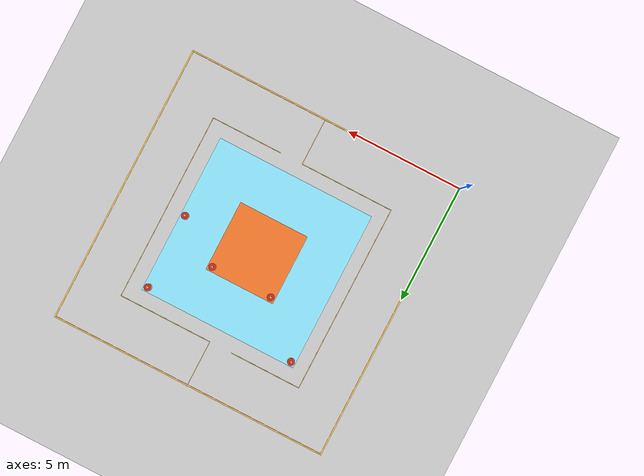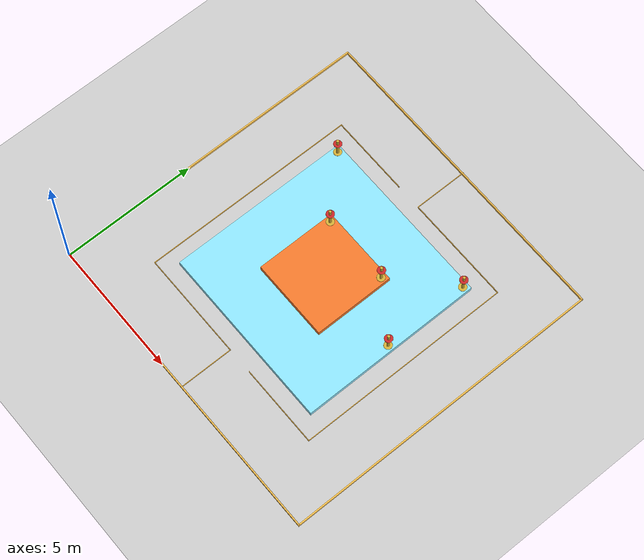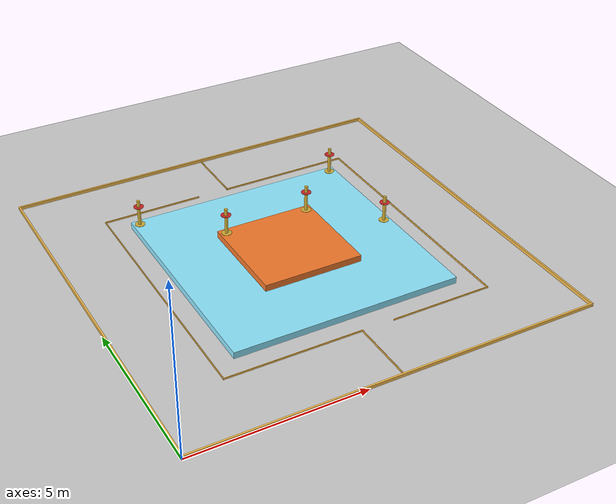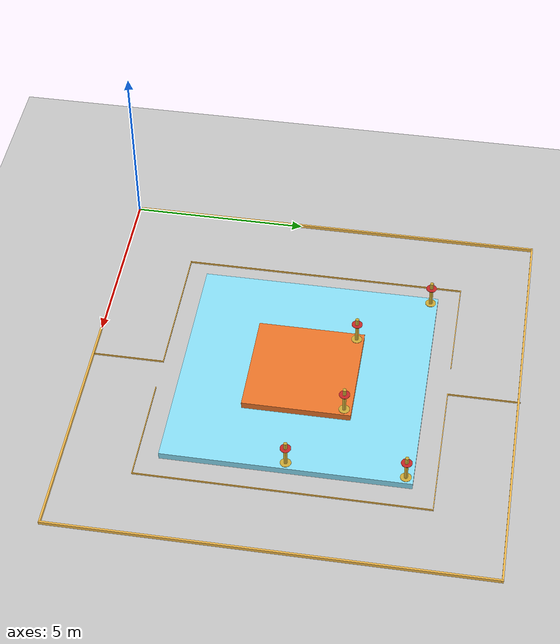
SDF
<sdf version="1.7">
 <world name="default">
  <model name="ground_plane">
   <static>1</static>
   <link name="link">
    <collision name="collision">
     <geometry><plane><normal>0 0 1</normal><size>100 100</size></plane></geometry>
     <surface>
      <contact><collide_bitmask>65535</collide_bitmask></contact>
      <friction><ode><mu>100</mu><mu2>50</mu2></ode></friction>
     </surface>
    </collision>
    <visual name="visual">
     <cast_shadows>0</cast_shadows>
     <geometry><plane><normal>0 0 1</normal><size>100 100</size></plane></geometry>
     <material>
      <script><uri>file://media/materials/scripts/gazebo.material</uri><name>Gazebo/Grey</name></script>
     </material>
    </visual>
   </link>
  </model>
  <model name="lvl0">
   <pose>6 6 0 0 -0 0</pose>
   <link name="Wall_10">
    <collision name="Wall_10_Collision">
     <geometry><box><size>8.02 0.02 0.05</size></box></geometry>
     <pose>0 0 0.025 0 -0 0</pose>
    </collision>
    <visual name="Wall_10_Visual">
     <pose>0 0 0.025 0 -0 0</pose>
     <geometry><box><size>8.02 0.02 0.05</size></box></geometry>
     <material>
      <script><uri>file://media/materials/scripts/gazebo.material</uri><name>Gazebo/Grey</name></script>
      <ambient>1 0.764706 0.305882 1</ambient>
     </material>
     <meta><layer>0</layer></meta>
    </visual>
    <pose>-3.975 0.0075 0 0 -0 1.5708</pose>
   </link>
   <link name="Wall_12">
    <collision name="Wall_12_Collision">
     <geometry><box><size>8.02 0.02 0.05</size></box></geometry>
     <pose>0 0 0.025 0 -0 0</pose>
    </collision>
    <visual name="Wall_12_Visual">
     <pose>0 0 0.025 0 -0 0</pose>
     <geometry><box><size>8.02 0.02 0.05</size></box></geometry>
     <material>
      <script><uri>file://media/materials/scripts/gazebo.material</uri><name>Gazebo/Grey</name></script>
      <ambient>1 0.764706 0.305882 1</ambient>
     </material>
     <meta><layer>0</layer></meta>
    </visual>
    <pose>4.025 0.0075 0 0 -0 1.5708</pose>
   </link>
   <link name="Wall_14">
    <collision name="Wall_14_Collision">
     <geometry><box><size>4.02 0.02 0.05</size></box></geometry>
     <pose>0 0 0.025 0 -0 0</pose>
    </collision>
    <visual name="Wall_14_Visual">
     <pose>0 0 0.025 0 -0 0</pose>
     <geometry><box><size>4.02 0.02 0.05</size></box></geometry>
     <material>
      <script><uri>file://media/materials/scripts/gazebo.material</uri><name>Gazebo/Grey</name></script>
      <ambient>1 0.764706 0.305882 1</ambient>
     </material>
     <meta><layer>0</layer></meta>
    </visual>
    <pose>2.025 4.0075 0 0 -0 3.14159</pose>
   </link>
   <link name="Wall_16">
    <collision name="Wall_16_Collision">
     <geometry><box><size>4.02 0.02 0.05</size></box></geometry>
     <pose>0 0 0.025 0 -0 0</pose>
    </collision>
    <visual name="Wall_16_Visual">
     <pose>0 0 0.025 0 -0 0</pose>
     <geometry><box><size>4.02 0.02 0.05</size></box></geometry>
     <material>
      <script><uri>file://media/materials/scripts/gazebo.material</uri><name>Gazebo/Grey</name></script>
      <ambient>1 0.764706 0.305882 1</ambient>
     </material>
     <meta><layer>0</layer></meta>
    </visual>
    <pose>-1.975 -3.9925 0 0 -0 0</pose>
   </link>
   <link name="Wall_18">
    <collision name="Wall_18_Collision">
     <geometry><box><size>2.02 0.02 0.05</size></box></geometry>
     <pose>0 0 0.025 0 -0 0</pose>
    </collision>
    <visual name="Wall_18_Visual">
     <pose>0 0 0.025 0 -0 0</pose>
     <geometry><box><size>2.02 0.02 0.05</size></box></geometry>
     <material>
      <script><uri>file://media/materials/scripts/gazebo.material</uri><name>Gazebo/Grey</name></script>
      <ambient>1 0.764706 0.305882 1</ambient>
     </material>
     <meta><layer>0</layer></meta>
    </visual>
    <pose>0.025 5.0075 0 0 -0 1.5708</pose>
   </link>
   <link name="Wall_20">
    <collision name="Wall_20_Collision">
     <geometry><box><size>2.02 0.02 0.05</size></box></geometry>
     <pose>0 0 0.025 0 -0 0</pose>
    </collision>
    <visual name="Wall_20_Visual">
     <pose>0 0 0.025 0 -0 0</pose>
     <geometry><box><size>2.02 0.02 0.05</size></box></geometry>
     <material>
      <script><uri>file://media/materials/scripts/gazebo.material</uri><name>Gazebo/Grey</name></script>
      <ambient>1 0.764706 0.305882 1</ambient>
     </material>
     <meta><layer>0</layer></meta>
    </visual>
    <pose>0.025 -4.9925 0 0 -0 -1.5708</pose>
   </link>
   <link name="Wall_22">
    <collision name="Wall_22_Collision">
     <geometry><box><size>3.045 0.02 0.05</size></box></geometry>
     <pose>0 0 0.025 0 -0 0</pose>
    </collision>
    <visual name="Wall_22_Visual">
     <pose>0 0 0.025 0 -0 0</pose>
     <geometry><box><size>3.045 0.02 0.05</size></box></geometry>
     <material>
      <script><uri>file://media/materials/scripts/gazebo.material</uri><name>Gazebo/Grey</name></script>
      <ambient>1 0.764706 0.305882 1</ambient>
     </material>
     <meta><layer>0</layer></meta>
    </visual>
    <pose>-2.4625 4.0075 0 0 -0 0</pose>
   </link>
   <link name="Wall_24">
    <collision name="Wall_24_Collision">
     <geometry><box><size>3.045 0.02 0.05</size></box></geometry>
     <pose>0 0 0.025 0 -0 0</pose>
    </collision>
    <visual name="Wall_24_Visual">
     <pose>0 0 0.025 0 -0 0</pose>
     <geometry><box><size>3.045 0.02 0.05</size></box></geometry>
     <material>
      <script><uri>file://media/materials/scripts/gazebo.material</uri><name>Gazebo/Grey</name></script>
      <ambient>1 0.764706 0.305882 1</ambient>
     </material>
     <meta><layer>0</layer></meta>
    </visual>
    <pose>2.5125 -3.9925 0 0 -0 3.14159</pose>
   </link>
   <link name="Wall_5">
    <collision name="Wall_5_Collision">
     <geometry><box><size>12 0.05 0.1</size></box></geometry>
     <pose>0 0 0.05 0 -0 0</pose>
    </collision>
    <visual name="Wall_5_Visual">
     <pose>0 0 0.05 0 -0 0</pose>
     <geometry><box><size>12 0.05 0.1</size></box></geometry>
     <material>
      <script><uri>file://media/materials/scripts/gazebo.material</uri><name>Gazebo/Grey</name></script>
      <ambient>1 0.764706 0.305882 1</ambient>
     </material>
     <meta><layer>0</layer></meta>
    </visual>
    <pose>-5.975 -0.0175 0 0 -0 -1.5708</pose>
   </link>
   <link name="Wall_6">
    <collision name="Wall_6_Collision">
     <geometry><box><size>12 0.05 0.1</size></box></geometry>
     <pose>0 0 0.05 0 -0 0</pose>
    </collision>
    <visual name="Wall_6_Visual">
     <pose>0 0 0.05 0 -0 0</pose>
     <geometry><box><size>12 0.05 0.1</size></box></geometry>
     <material>
      <script><uri>file://media/materials/scripts/gazebo.material</uri><name>Gazebo/Grey</name></script>
      <ambient>1 0.764706 0.305882 1</ambient>
     </material>
     <meta><layer>0</layer></meta>
    </visual>
    <pose>0 -5.9925 0 0 -0 0</pose>
   </link>
   <link name="Wall_7">
    <collision name="Wall_7_Collision">
     <geometry><box><size>12 0.05 0.1</size></box></geometry>
     <pose>0 0 0.05 0 -0 0</pose>
    </collision>
    <visual name="Wall_7_Visual">
     <pose>0 0 0.05 0 -0 0</pose>
     <geometry><box><size>12 0.05 0.1</size></box></geometry>
     <material>
      <script><uri>file://media/materials/scripts/gazebo.material</uri><name>Gazebo/Grey</name></script>
      <ambient>1 0.764706 0.305882 1</ambient>
     </material>
     <meta><layer>0</layer></meta>
    </visual>
    <pose>5.975 -0.0175 0 0 -0 1.5708</pose>
   </link>
   <link name="Wall_8">
    <collision name="Wall_8_Collision">
     <geometry><box><size>12 0.05 0.1</size></box></geometry>
     <pose>0 0 0.05 0 -0 0</pose>
    </collision>
    <visual name="Wall_8_Visual">
     <pose>0 0 0.05 0 -0 0</pose>
     <geometry><box><size>12 0.05 0.1</size></box></geometry>
     <material>
      <script><uri>file://media/materials/scripts/gazebo.material</uri><name>Gazebo/Grey</name></script>
      <ambient>1 0.764706 0.305882 1</ambient>
     </material>
     <meta><layer>0</layer></meta>
    </visual>
    <pose>0 5.9575 0 0 -0 3.14159</pose>
   </link>
   <static>1</static>
  </model>
  <model name="pole_tier_1_2">
   <link name="link">
    <inertial>
     <mass>1</mass>
     <inertia><ixx>0.145833</ixx><ixy>0</ixy><ixz>0</ixz><iyy>0.145833</iyy><iyz>0</iyz><izz>0.125</izz></inertia>
    </inertial>
    <pose>0 0 0.4 0 -0 0</pose>
    <visual name="visual">
     <geometry><cylinder><radius>0.05</radius><length>0.8</length></cylinder></geometry>
     <material>
      <script><name>Gazebo/Gray</name><uri>file://media/materials/scripts/gazebo.material</uri></script>
      <shader type="pixel"><normal_map>__default__</normal_map></shader>
      <ambient>0.83 0.686 0.216 1</ambient>
      <diffuse>0.83 0.686 0.216 1</diffuse>
      <specular>0.83 0.686 0.216 1</specular>
      <emissive>0 0 0 1</emissive>
     </material>
    </visual>
    <collision name="collision">
     <geometry><cylinder><radius>0.05</radius><length>0.8</length></cylinder></geometry>
     <surface>
      <friction>
       <ode><mu>1</mu><mu2>1</mu2><fdir1>0 0 0</fdir1><slip1>0</slip1><slip2>0</slip2></ode>
       <torsional>
        <coefficient>1</coefficient>
        <patch_radius>0</patch_radius>
        <surface_radius>0</surface_radius>
        <use_patch_radius>1</use_patch_radius>
        <ode><slip>0</slip></ode>
       </torsional>
      </friction>
      <bounce><restitution_coefficient>0</restitution_coefficient><threshold>1e+06</threshold></bounce>
      <contact>
       <collide_without_contact>0</collide_without_contact>
       <collide_without_contact_bitmask>1</collide_without_contact_bitmask>
       <collide_bitmask>1</collide_bitmask>
       <ode>
        <soft_cfm>0</soft_cfm>
        <soft_erp>0.2</soft_erp>
        <kp>1e+13</kp>
        <kd>1</kd>
        <max_vel>0.01</max_vel>
        <min_depth>0</min_depth>
       </ode>
       <bullet>
        <split_impulse>1</split_impulse>
        <split_impulse_penetration_threshold>-0.01</split_impulse_penetration_threshold>
        <soft_cfm>0</soft_cfm>
        <soft_erp>0.2</soft_erp>
        <kp>1e+13</kp>
        <kd>1</kd>
       </bullet>
      </contact>
     </surface>
    </collision>
   </link>
   <link name="link_clone">
    <inertial>
     <mass>1</mass>
     <inertia><ixx>0.145833</ixx><ixy>0</ixy><ixz>0</ixz><iyy>0.145833</iyy><iyz>0</iyz><izz>0.125</izz></inertia>
    </inertial>
    <visual name="visual">
     <geometry><cylinder><radius>0.15</radius><length>0.01</length></cylinder></geometry>
     <material>
      <script><name>Gazebo/Grey</name><uri>file://media/materials/scripts/gazebo.material</uri></script>
      <shader type="pixel"><normal_map>__default__</normal_map></shader>
      <ambient>0.83 0.686 0.216 1</ambient>
      <diffuse>0.7 0.7 0.7 1</diffuse>
      <specular>0.01 0.01 0.01 1</specular>
      <emissive>0 0 0 1</emissive>
     </material>
    </visual>
    <collision name="collision">
     <geometry><cylinder><radius>0.15</radius><length>0.01</length></cylinder></geometry>
     <surface>
      <friction>
       <ode><mu>1</mu><mu2>1</mu2><fdir1>0 0 0</fdir1><slip1>0</slip1><slip2>0</slip2></ode>
       <torsional>
        <coefficient>1</coefficient>
        <patch_radius>0</patch_radius>
        <surface_radius>0</surface_radius>
        <use_patch_radius>1</use_patch_radius>
        <ode><slip>0</slip></ode>
       </torsional>
      </friction>
      <bounce><restitution_coefficient>0</restitution_coefficient><threshold>1e+06</threshold></bounce>
      <contact>
       <collide_without_contact>0</collide_without_contact>
       <collide_without_contact_bitmask>1</collide_without_contact_bitmask>
       <collide_bitmask>1</collide_bitmask>
       <ode>
        <soft_cfm>0</soft_cfm>
        <soft_erp>0.2</soft_erp>
        <kp>1e+13</kp>
        <kd>1</kd>
        <max_vel>0.01</max_vel>
        <min_depth>0</min_depth>
       </ode>
       <bullet>
        <split_impulse>1</split_impulse>
        <split_impulse_penetration_threshold>-0.01</split_impulse_penetration_threshold>
        <soft_cfm>0</soft_cfm>
        <soft_erp>0.2</soft_erp>
        <kp>1e+13</kp>
        <kd>1</kd>
       </bullet>
      </contact>
     </surface>
    </collision>
   </link>
   <link name="link_clone_clone">
    <inertial>
     <mass>1</mass>
     <inertia><ixx>0.145833</ixx><ixy>0</ixy><ixz>0</ixz><iyy>0.145833</iyy><iyz>0</iyz><izz>0.125</izz></inertia>
    </inertial>
    <pose>0 0 0.6 0 -0 0</pose>
    <visual name="visual">
     <geometry><cylinder><radius>0.15</radius><length>0.01</length></cylinder></geometry>
     <material>
      <script><name>Gazebo/Red</name><uri>file://media/materials/scripts/gazebo.material</uri></script>
      <shader type="pixel"><normal_map>__default__</normal_map></shader>
      <ambient>0.83 0.686 0.216 1</ambient>
      <diffuse>0.7 0.7 0.7 1</diffuse>
      <specular>0.01 0.01 0.01 1</specular>
      <emissive>0 0 0 1</emissive>
     </material>
    </visual>
    <collision name="collision">
     <geometry><cylinder><radius>0.15</radius><length>0.01</length></cylinder></geometry>
     <surface>
      <friction>
       <ode><mu>1</mu><mu2>1</mu2><fdir1>0 0 0</fdir1><slip1>0</slip1><slip2>0</slip2></ode>
       <torsional>
        <coefficient>1</coefficient>
        <patch_radius>0</patch_radius>
        <surface_radius>0</surface_radius>
        <use_patch_radius>1</use_patch_radius>
        <ode><slip>0</slip></ode>
       </torsional>
      </friction>
      <bounce><restitution_coefficient>0</restitution_coefficient><threshold>1e+06</threshold></bounce>
      <contact>
       <collide_without_contact>0</collide_without_contact>
       <collide_without_contact_bitmask>1</collide_without_contact_bitmask>
       <collide_bitmask>1</collide_bitmask>
       <ode>
        <soft_cfm>0</soft_cfm>
        <soft_erp>0.2</soft_erp>
        <kp>1e+13</kp>
        <kd>1</kd>
        <max_vel>0.01</max_vel>
        <min_depth>0</min_depth>
       </ode>
       <bullet>
        <split_impulse>1</split_impulse>
        <split_impulse_penetration_threshold>-0.01</split_impulse_penetration_threshold>
        <soft_cfm>0</soft_cfm>
        <soft_erp>0.2</soft_erp>
        <kp>1e+13</kp>
        <kd>1</kd>
       </bullet>
      </contact>
     </surface>
    </collision>
   </link>
   <joint name="link_JOINT_0" type="fixed">
    <parent>link</parent>
    <child>link_clone</child>
    <physics>
     <ode><limit><cfm>0</cfm><erp>0.2</erp></limit><suspension><cfm>0</cfm><erp>0.2</erp></suspension></ode>
    </physics>
   </joint>
   <joint name="link_JOINT_1" type="fixed">
    <parent>link</parent>
    <child>link_clone_clone</child>
    <physics>
     <ode><limit><cfm>0</cfm><erp>0.2</erp></limit><suspension><cfm>0</cfm><erp>0.2</erp></suspension></ode>
    </physics>
   </joint>
   <static>0</static>
   <pose>9.20111 9.19778 0.205004 7e-06 -2.5e-05 -0.022287</pose>
  </model>
  <model name="pole_tier_1_3">
   <link name="link">
    <inertial>
     <mass>1</mass>
     <inertia><ixx>0.145833</ixx><ixy>0</ixy><ixz>0</ixz><iyy>0.145833</iyy><iyz>0</iyz><izz>0.125</izz></inertia>
    </inertial>
    <pose>0 0 0.4 0 -0 0</pose>
    <visual name="visual">
     <geometry><cylinder><radius>0.05</radius><length>0.8</length></cylinder></geometry>
     <material>
      <script><name>Gazebo/Gray</name><uri>file://media/materials/scripts/gazebo.material</uri></script>
      <shader type="pixel"><normal_map>__default__</normal_map></shader>
      <ambient>0.83 0.686 0.216 1</ambient>
      <diffuse>0.83 0.686 0.216 1</diffuse>
      <specular>0.83 0.686 0.216 1</specular>
      <emissive>0 0 0 1</emissive>
     </material>
    </visual>
    <collision name="collision">
     <geometry><cylinder><radius>0.05</radius><length>0.8</length></cylinder></geometry>
     <surface>
      <friction>
       <ode><mu>1</mu><mu2>1</mu2><fdir1>0 0 0</fdir1><slip1>0</slip1><slip2>0</slip2></ode>
       <torsional>
        <coefficient>1</coefficient>
        <patch_radius>0</patch_radius>
        <surface_radius>0</surface_radius>
        <use_patch_radius>1</use_patch_radius>
        <ode><slip>0</slip></ode>
       </torsional>
      </friction>
      <bounce><restitution_coefficient>0</restitution_coefficient><threshold>1e+06</threshold></bounce>
      <contact>
       <collide_without_contact>0</collide_without_contact>
       <collide_without_contact_bitmask>1</collide_without_contact_bitmask>
       <collide_bitmask>1</collide_bitmask>
       <ode>
        <soft_cfm>0</soft_cfm>
        <soft_erp>0.2</soft_erp>
        <kp>1e+13</kp>
        <kd>1</kd>
        <max_vel>0.01</max_vel>
        <min_depth>0</min_depth>
       </ode>
       <bullet>
        <split_impulse>1</split_impulse>
        <split_impulse_penetration_threshold>-0.01</split_impulse_penetration_threshold>
        <soft_cfm>0</soft_cfm>
        <soft_erp>0.2</soft_erp>
        <kp>1e+13</kp>
        <kd>1</kd>
       </bullet>
      </contact>
     </surface>
    </collision>
   </link>
   <link name="link_clone">
    <inertial>
     <mass>1</mass>
     <inertia><ixx>0.145833</ixx><ixy>0</ixy><ixz>0</ixz><iyy>0.145833</iyy><iyz>0</iyz><izz>0.125</izz></inertia>
    </inertial>
    <visual name="visual">
     <geometry><cylinder><radius>0.15</radius><length>0.01</length></cylinder></geometry>
     <material>
      <script><name>Gazebo/Grey</name><uri>file://media/materials/scripts/gazebo.material</uri></script>
      <shader type="pixel"><normal_map>__default__</normal_map></shader>
      <ambient>0.83 0.686 0.216 1</ambient>
      <diffuse>0.7 0.7 0.7 1</diffuse>
      <specular>0.01 0.01 0.01 1</specular>
      <emissive>0 0 0 1</emissive>
     </material>
    </visual>
    <collision name="collision">
     <geometry><cylinder><radius>0.15</radius><length>0.01</length></cylinder></geometry>
     <surface>
      <friction>
       <ode><mu>1</mu><mu2>1</mu2><fdir1>0 0 0</fdir1><slip1>0</slip1><slip2>0</slip2></ode>
       <torsional>
        <coefficient>1</coefficient>
        <patch_radius>0</patch_radius>
        <surface_radius>0</surface_radius>
        <use_patch_radius>1</use_patch_radius>
        <ode><slip>0</slip></ode>
       </torsional>
      </friction>
      <bounce><restitution_coefficient>0</restitution_coefficient><threshold>1e+06</threshold></bounce>
      <contact>
       <collide_without_contact>0</collide_without_contact>
       <collide_without_contact_bitmask>1</collide_without_contact_bitmask>
       <collide_bitmask>1</collide_bitmask>
       <ode>
        <soft_cfm>0</soft_cfm>
        <soft_erp>0.2</soft_erp>
        <kp>1e+13</kp>
        <kd>1</kd>
        <max_vel>0.01</max_vel>
        <min_depth>0</min_depth>
       </ode>
       <bullet>
        <split_impulse>1</split_impulse>
        <split_impulse_penetration_threshold>-0.01</split_impulse_penetration_threshold>
        <soft_cfm>0</soft_cfm>
        <soft_erp>0.2</soft_erp>
        <kp>1e+13</kp>
        <kd>1</kd>
       </bullet>
      </contact>
     </surface>
    </collision>
   </link>
   <link name="link_clone_clone">
    <inertial>
     <mass>1</mass>
     <inertia><ixx>0.145833</ixx><ixy>0</ixy><ixz>0</ixz><iyy>0.145833</iyy><iyz>0</iyz><izz>0.125</izz></inertia>
    </inertial>
    <pose>0 0 0.6 0 -0 0</pose>
    <visual name="visual">
     <geometry><cylinder><radius>0.15</radius><length>0.01</length></cylinder></geometry>
     <material>
      <script><name>Gazebo/Red</name><uri>file://media/materials/scripts/gazebo.material</uri></script>
      <shader type="pixel"><normal_map>__default__</normal_map></shader>
      <ambient>0.83 0.686 0.216 1</ambient>
      <diffuse>0.7 0.7 0.7 1</diffuse>
      <specular>0.01 0.01 0.01 1</specular>
      <emissive>0 0 0 1</emissive>
     </material>
    </visual>
    <collision name="collision">
     <geometry><cylinder><radius>0.15</radius><length>0.01</length></cylinder></geometry>
     <surface>
      <friction>
       <ode><mu>1</mu><mu2>1</mu2><fdir1>0 0 0</fdir1><slip1>0</slip1><slip2>0</slip2></ode>
       <torsional>
        <coefficient>1</coefficient>
        <patch_radius>0</patch_radius>
        <surface_radius>0</surface_radius>
        <use_patch_radius>1</use_patch_radius>
        <ode><slip>0</slip></ode>
       </torsional>
      </friction>
      <bounce><restitution_coefficient>0</restitution_coefficient><threshold>1e+06</threshold></bounce>
      <contact>
       <collide_without_contact>0</collide_without_contact>
       <collide_without_contact_bitmask>1</collide_without_contact_bitmask>
       <collide_bitmask>1</collide_bitmask>
       <ode>
        <soft_cfm>0</soft_cfm>
        <soft_erp>0.2</soft_erp>
        <kp>1e+13</kp>
        <kd>1</kd>
        <max_vel>0.01</max_vel>
        <min_depth>0</min_depth>
       </ode>
       <bullet>
        <split_impulse>1</split_impulse>
        <split_impulse_penetration_threshold>-0.01</split_impulse_penetration_threshold>
        <soft_cfm>0</soft_cfm>
        <soft_erp>0.2</soft_erp>
        <kp>1e+13</kp>
        <kd>1</kd>
       </bullet>
      </contact>
     </surface>
    </collision>
   </link>
   <joint name="link_JOINT_0" type="fixed">
    <parent>link</parent>
    <child>link_clone</child>
    <physics>
     <ode><limit><cfm>0</cfm><erp>0.2</erp></limit><suspension><cfm>0</cfm><erp>0.2</erp></suspension></ode>
    </physics>
   </joint>
   <joint name="link_JOINT_1" type="fixed">
    <parent>link</parent>
    <child>link_clone_clone</child>
    <physics>
     <ode><limit><cfm>0</cfm><erp>0.2</erp></limit><suspension><cfm>0</cfm><erp>0.2</erp></suspension></ode>
    </physics>
   </joint>
   <static>0</static>
   <pose>2.80158 9.19959 0.205 4e-06 0 -0.007982</pose>
  </model>
  <model name="pole_tier_1_5">
   <link name="link">
    <inertial>
     <mass>1</mass>
     <inertia><ixx>0.145833</ixx><ixy>0</ixy><ixz>0</ixz><iyy>0.145833</iyy><iyz>0</iyz><izz>0.125</izz></inertia>
    </inertial>
    <pose>0 0 0.4 0 -0 0</pose>
    <visual name="visual">
     <geometry><cylinder><radius>0.05</radius><length>0.8</length></cylinder></geometry>
     <material>
      <script><name>Gazebo/Gray</name><uri>file://media/materials/scripts/gazebo.material</uri></script>
      <shader type="pixel"><normal_map>__default__</normal_map></shader>
      <ambient>0.83 0.686 0.216 1</ambient>
      <diffuse>0.83 0.686 0.216 1</diffuse>
      <specular>0.83 0.686 0.216 1</specular>
      <emissive>0 0 0 1</emissive>
     </material>
    </visual>
    <collision name="collision">
     <geometry><cylinder><radius>0.05</radius><length>0.8</length></cylinder></geometry>
     <surface>
      <friction>
       <ode><mu>1</mu><mu2>1</mu2><fdir1>0 0 0</fdir1><slip1>0</slip1><slip2>0</slip2></ode>
       <torsional>
        <coefficient>1</coefficient>
        <patch_radius>0</patch_radius>
        <surface_radius>0</surface_radius>
        <use_patch_radius>1</use_patch_radius>
        <ode><slip>0</slip></ode>
       </torsional>
      </friction>
      <bounce><restitution_coefficient>0</restitution_coefficient><threshold>1e+06</threshold></bounce>
      <contact>
       <collide_without_contact>0</collide_without_contact>
       <collide_without_contact_bitmask>1</collide_without_contact_bitmask>
       <collide_bitmask>1</collide_bitmask>
       <ode>
        <soft_cfm>0</soft_cfm>
        <soft_erp>0.2</soft_erp>
        <kp>1e+13</kp>
        <kd>1</kd>
        <max_vel>0.01</max_vel>
        <min_depth>0</min_depth>
       </ode>
       <bullet>
        <split_impulse>1</split_impulse>
        <split_impulse_penetration_threshold>-0.01</split_impulse_penetration_threshold>
        <soft_cfm>0</soft_cfm>
        <soft_erp>0.2</soft_erp>
        <kp>1e+13</kp>
        <kd>1</kd>
       </bullet>
      </contact>
     </surface>
    </collision>
   </link>
   <link name="link_clone">
    <inertial>
     <mass>1</mass>
     <inertia><ixx>0.145833</ixx><ixy>0</ixy><ixz>0</ixz><iyy>0.145833</iyy><iyz>0</iyz><izz>0.125</izz></inertia>
    </inertial>
    <visual name="visual">
     <geometry><cylinder><radius>0.15</radius><length>0.01</length></cylinder></geometry>
     <material>
      <script><name>Gazebo/Grey</name><uri>file://media/materials/scripts/gazebo.material</uri></script>
      <shader type="pixel"><normal_map>__default__</normal_map></shader>
      <ambient>0.83 0.686 0.216 1</ambient>
      <diffuse>0.7 0.7 0.7 1</diffuse>
      <specular>0.01 0.01 0.01 1</specular>
      <emissive>0 0 0 1</emissive>
     </material>
    </visual>
    <collision name="collision">
     <geometry><cylinder><radius>0.15</radius><length>0.01</length></cylinder></geometry>
     <surface>
      <friction>
       <ode><mu>1</mu><mu2>1</mu2><fdir1>0 0 0</fdir1><slip1>0</slip1><slip2>0</slip2></ode>
       <torsional>
        <coefficient>1</coefficient>
        <patch_radius>0</patch_radius>
        <surface_radius>0</surface_radius>
        <use_patch_radius>1</use_patch_radius>
        <ode><slip>0</slip></ode>
       </torsional>
      </friction>
      <bounce><restitution_coefficient>0</restitution_coefficient><threshold>1e+06</threshold></bounce>
      <contact>
       <collide_without_contact>0</collide_without_contact>
       <collide_without_contact_bitmask>1</collide_without_contact_bitmask>
       <collide_bitmask>1</collide_bitmask>
       <ode>
        <soft_cfm>0</soft_cfm>
        <soft_erp>0.2</soft_erp>
        <kp>1e+13</kp>
        <kd>1</kd>
        <max_vel>0.01</max_vel>
        <min_depth>0</min_depth>
       </ode>
       <bullet>
        <split_impulse>1</split_impulse>
        <split_impulse_penetration_threshold>-0.01</split_impulse_penetration_threshold>
        <soft_cfm>0</soft_cfm>
        <soft_erp>0.2</soft_erp>
        <kp>1e+13</kp>
        <kd>1</kd>
       </bullet>
      </contact>
     </surface>
    </collision>
   </link>
   <link name="link_clone_clone">
    <inertial>
     <mass>1</mass>
     <inertia><ixx>0.145833</ixx><ixy>0</ixy><ixz>0</ixz><iyy>0.145833</iyy><iyz>0</iyz><izz>0.125</izz></inertia>
    </inertial>
    <pose>0 0 0.6 0 -0 0</pose>
    <visual name="visual">
     <geometry><cylinder><radius>0.15</radius><length>0.01</length></cylinder></geometry>
     <material>
      <script><name>Gazebo/Red</name><uri>file://media/materials/scripts/gazebo.material</uri></script>
      <shader type="pixel"><normal_map>__default__</normal_map></shader>
      <ambient>0.83 0.686 0.216 1</ambient>
      <diffuse>0.7 0.7 0.7 1</diffuse>
      <specular>0.01 0.01 0.01 1</specular>
      <emissive>0 0 0 1</emissive>
     </material>
    </visual>
    <collision name="collision">
     <geometry><cylinder><radius>0.15</radius><length>0.01</length></cylinder></geometry>
     <surface>
      <friction>
       <ode><mu>1</mu><mu2>1</mu2><fdir1>0 0 0</fdir1><slip1>0</slip1><slip2>0</slip2></ode>
       <torsional>
        <coefficient>1</coefficient>
        <patch_radius>0</patch_radius>
        <surface_radius>0</surface_radius>
        <use_patch_radius>1</use_patch_radius>
        <ode><slip>0</slip></ode>
       </torsional>
      </friction>
      <bounce><restitution_coefficient>0</restitution_coefficient><threshold>1e+06</threshold></bounce>
      <contact>
       <collide_without_contact>0</collide_without_contact>
       <collide_without_contact_bitmask>1</collide_without_contact_bitmask>
       <collide_bitmask>1</collide_bitmask>
       <ode>
        <soft_cfm>0</soft_cfm>
        <soft_erp>0.2</soft_erp>
        <kp>1e+13</kp>
        <kd>1</kd>
        <max_vel>0.01</max_vel>
        <min_depth>0</min_depth>
       </ode>
       <bullet>
        <split_impulse>1</split_impulse>
        <split_impulse_penetration_threshold>-0.01</split_impulse_penetration_threshold>
        <soft_cfm>0</soft_cfm>
        <soft_erp>0.2</soft_erp>
        <kp>1e+13</kp>
        <kd>1</kd>
       </bullet>
      </contact>
     </surface>
    </collision>
   </link>
   <joint name="link_JOINT_0" type="fixed">
    <parent>link</parent>
    <child>link_clone</child>
    <physics>
     <ode><limit><cfm>0</cfm><erp>0.2</erp></limit><suspension><cfm>0</cfm><erp>0.2</erp></suspension></ode>
    </physics>
   </joint>
   <joint name="link_JOINT_1" type="fixed">
    <parent>link</parent>
    <child>link_clone_clone</child>
    <physics>
     <ode><limit><cfm>0</cfm><erp>0.2</erp></limit><suspension><cfm>0</cfm><erp>0.2</erp></suspension></ode>
    </physics>
   </joint>
   <static>0</static>
   <pose>9.2004 5.99751 0.204996 -7e-06 -4e-05 -0.017491</pose>
  </model>
  <model name="lvl1,2">
   <link name="link">
    <inertial>
     <mass>100</mass>
     <inertia>
      <ixx>0.166667</ixx>
      <ixy>0</ixy>
      <ixz>0</ixz>
      <iyy>0.166667</iyy>
      <iyz>0</iyz>
      <izz>0.166667</izz>
     </inertia>
    </inertial>
    <pose>0 0 0.3 0 -0 0</pose>
    <visual name="visual">
     <geometry><box><size>3 3 0.2</size></box></geometry>
     <material>
      <script><name>Gazebo/Grey</name><uri>file://media/materials/scripts/gazebo.material</uri></script>
      <shader type="pixel"><normal_map>__default__</normal_map></shader>
      <ambient>0.96 0.474 0.168 1</ambient>
      <diffuse>0.7 0.7 0.7 1</diffuse>
      <specular>0.01 0.01 0.01 1</specular>
      <emissive>0 0 0 1</emissive>
     </material>
    </visual>
    <collision name="collision">
     <geometry><box><size>3 3 0.2</size></box></geometry>
     <surface>
      <friction>
       <ode><mu>1</mu><mu2>1</mu2><fdir1>0 0 0</fdir1><slip1>0</slip1><slip2>0</slip2></ode>
       <torsional>
        <coefficient>1</coefficient>
        <patch_radius>0</patch_radius>
        <surface_radius>0</surface_radius>
        <use_patch_radius>1</use_patch_radius>
        <ode><slip>0</slip></ode>
       </torsional>
      </friction>
      <bounce><restitution_coefficient>0</restitution_coefficient><threshold>1e+06</threshold></bounce>
      <contact>
       <collide_without_contact>0</collide_without_contact>
       <collide_without_contact_bitmask>1</collide_without_contact_bitmask>
       <collide_bitmask>1</collide_bitmask>
       <ode>
        <soft_cfm>0</soft_cfm>
        <soft_erp>0.2</soft_erp>
        <kp>1e+13</kp>
        <kd>1</kd>
        <max_vel>0.01</max_vel>
        <min_depth>0</min_depth>
       </ode>
       <bullet>
        <split_impulse>1</split_impulse>
        <split_impulse_penetration_threshold>-0.01</split_impulse_penetration_threshold>
        <soft_cfm>0</soft_cfm>
        <soft_erp>0.2</soft_erp>
        <kp>1e+13</kp>
        <kd>1</kd>
       </bullet>
      </contact>
     </surface>
    </collision>
   </link>
   <link name="link_0">
    <inertial>
     <mass>1</mass>
     <inertia>
      <ixx>0.166667</ixx>
      <ixy>0</ixy>
      <ixz>0</ixz>
      <iyy>0.166667</iyy>
      <iyz>0</iyz>
      <izz>0.166667</izz>
     </inertia>
    </inertial>
    <pose>0 0 0.1 0 -0 0</pose>
    <visual name="visual">
     <geometry><box><size>6.8 6.8 0.2</size></box></geometry>
     <material>
      <lighting>1</lighting>
      <script><uri>file://media/materials/scripts/gazebo.material</uri><name>Gazebo/Grey</name></script>
      <shader type="pixel"><normal_map>__default__</normal_map></shader>
      <ambient>0.56 0.905 1 1</ambient>
      <diffuse>0.7 0.7 0.7 1</diffuse>
      <specular>0.01 0.01 0.01 1</specular>
      <emissive>0 0 0 1</emissive>
     </material>
    </visual>
    <collision name="collision">
     <geometry><box><size>6.8 6.8 0.2</size></box></geometry>
     <surface>
      <friction>
       <ode><mu>1</mu><mu2>1</mu2><fdir1>0 0 0</fdir1><slip1>0</slip1><slip2>0</slip2></ode>
       <torsional>
        <coefficient>1</coefficient>
        <patch_radius>0</patch_radius>
        <surface_radius>0</surface_radius>
        <use_patch_radius>1</use_patch_radius>
        <ode><slip>0</slip></ode>
       </torsional>
      </friction>
      <bounce><restitution_coefficient>0</restitution_coefficient><threshold>1e+06</threshold></bounce>
      <contact>
       <collide_without_contact>0</collide_without_contact>
       <collide_without_contact_bitmask>1</collide_without_contact_bitmask>
       <collide_bitmask>1</collide_bitmask>
       <ode>
        <soft_cfm>0</soft_cfm>
        <soft_erp>0.2</soft_erp>
        <kp>1e+13</kp>
        <kd>1</kd>
        <max_vel>0.01</max_vel>
        <min_depth>0</min_depth>
       </ode>
       <bullet>
        <split_impulse>1</split_impulse>
        <split_impulse_penetration_threshold>-0.01</split_impulse_penetration_threshold>
        <soft_cfm>0</soft_cfm>
        <soft_erp>0.2</soft_erp>
        <kp>1e+13</kp>
        <kd>1</kd>
       </bullet>
      </contact>
     </surface>
    </collision>
   </link>
   <joint name="link_0_JOINT_0" type="fixed">
    <parent>link_0</parent>
    <child>link</child>
    <physics>
     <ode><limit><cfm>0</cfm><erp>0.2</erp></limit><suspension><cfm>0</cfm><erp>0.2</erp></suspension></ode>
    </physics>
   </joint>
   <static>1</static>
   <pose>6 6 0 0 -0 0</pose>
  </model>
  <model name="pole_tier_1">
   <link name="link">
    <inertial>
     <mass>1</mass>
     <inertia><ixx>0.145833</ixx><ixy>0</ixy><ixz>0</ixz><iyy>0.145833</iyy><iyz>0</iyz><izz>0.125</izz></inertia>
    </inertial>
    <pose>0 0 0.4 0 -0 0</pose>
    <visual name="visual">
     <geometry><cylinder><radius>0.05</radius><length>0.8</length></cylinder></geometry>
     <material>
      <script><name>Gazebo/Gray</name><uri>file://media/materials/scripts/gazebo.material</uri></script>
      <shader type="pixel"><normal_map>__default__</normal_map></shader>
      <ambient>0.83 0.686 0.216 1</ambient>
      <diffuse>0.83 0.686 0.216 1</diffuse>
      <specular>0.83 0.686 0.216 1</specular>
      <emissive>0 0 0 1</emissive>
     </material>
    </visual>
    <collision name="collision">
     <geometry><cylinder><radius>0.05</radius><length>0.8</length></cylinder></geometry>
     <surface>
      <friction>
       <ode><mu>1</mu><mu2>1</mu2><fdir1>0 0 0</fdir1><slip1>0</slip1><slip2>0</slip2></ode>
       <torsional>
        <coefficient>1</coefficient>
        <patch_radius>0</patch_radius>
        <surface_radius>0</surface_radius>
        <use_patch_radius>1</use_patch_radius>
        <ode><slip>0</slip></ode>
       </torsional>
      </friction>
      <bounce><restitution_coefficient>0</restitution_coefficient><threshold>1e+06</threshold></bounce>
      <contact>
       <collide_without_contact>0</collide_without_contact>
       <collide_without_contact_bitmask>1</collide_without_contact_bitmask>
       <collide_bitmask>1</collide_bitmask>
       <ode>
        <soft_cfm>0</soft_cfm>
        <soft_erp>0.2</soft_erp>
        <kp>1e+13</kp>
        <kd>1</kd>
        <max_vel>0.01</max_vel>
        <min_depth>0</min_depth>
       </ode>
       <bullet>
        <split_impulse>1</split_impulse>
        <split_impulse_penetration_threshold>-0.01</split_impulse_penetration_threshold>
        <soft_cfm>0</soft_cfm>
        <soft_erp>0.2</soft_erp>
        <kp>1e+13</kp>
        <kd>1</kd>
       </bullet>
      </contact>
     </surface>
    </collision>
   </link>
   <link name="link_clone">
    <inertial>
     <mass>1</mass>
     <inertia><ixx>0.145833</ixx><ixy>0</ixy><ixz>0</ixz><iyy>0.145833</iyy><iyz>0</iyz><izz>0.125</izz></inertia>
    </inertial>
    <visual name="visual">
     <geometry><cylinder><radius>0.15</radius><length>0.01</length></cylinder></geometry>
     <material>
      <script><name>Gazebo/Grey</name><uri>file://media/materials/scripts/gazebo.material</uri></script>
      <shader type="pixel"><normal_map>__default__</normal_map></shader>
      <ambient>0.83 0.686 0.216 1</ambient>
      <diffuse>0.7 0.7 0.7 1</diffuse>
      <specular>0.01 0.01 0.01 1</specular>
      <emissive>0 0 0 1</emissive>
     </material>
    </visual>
    <collision name="collision">
     <geometry><cylinder><radius>0.15</radius><length>0.01</length></cylinder></geometry>
     <surface>
      <friction>
       <ode><mu>1</mu><mu2>1</mu2><fdir1>0 0 0</fdir1><slip1>0</slip1><slip2>0</slip2></ode>
       <torsional>
        <coefficient>1</coefficient>
        <patch_radius>0</patch_radius>
        <surface_radius>0</surface_radius>
        <use_patch_radius>1</use_patch_radius>
        <ode><slip>0</slip></ode>
       </torsional>
      </friction>
      <bounce><restitution_coefficient>0</restitution_coefficient><threshold>1e+06</threshold></bounce>
      <contact>
       <collide_without_contact>0</collide_without_contact>
       <collide_without_contact_bitmask>1</collide_without_contact_bitmask>
       <collide_bitmask>1</collide_bitmask>
       <ode>
        <soft_cfm>0</soft_cfm>
        <soft_erp>0.2</soft_erp>
        <kp>1e+13</kp>
        <kd>1</kd>
        <max_vel>0.01</max_vel>
        <min_depth>0</min_depth>
       </ode>
       <bullet>
        <split_impulse>1</split_impulse>
        <split_impulse_penetration_threshold>-0.01</split_impulse_penetration_threshold>
        <soft_cfm>0</soft_cfm>
        <soft_erp>0.2</soft_erp>
        <kp>1e+13</kp>
        <kd>1</kd>
       </bullet>
      </contact>
     </surface>
    </collision>
   </link>
   <link name="link_clone_clone">
    <inertial>
     <mass>1</mass>
     <inertia><ixx>0.145833</ixx><ixy>0</ixy><ixz>0</ixz><iyy>0.145833</iyy><iyz>0</iyz><izz>0.125</izz></inertia>
    </inertial>
    <pose>0 0 0.6 0 -0 0</pose>
    <visual name="visual">
     <geometry><cylinder><radius>0.15</radius><length>0.01</length></cylinder></geometry>
     <material>
      <script><name>Gazebo/Red</name><uri>file://media/materials/scripts/gazebo.material</uri></script>
      <shader type="pixel"><normal_map>__default__</normal_map></shader>
      <ambient>0.83 0.686 0.216 1</ambient>
      <diffuse>0.7 0.7 0.7 1</diffuse>
      <specular>0.01 0.01 0.01 1</specular>
      <emissive>0 0 0 1</emissive>
     </material>
    </visual>
    <collision name="collision">
     <geometry><cylinder><radius>0.15</radius><length>0.01</length></cylinder></geometry>
     <surface>
      <friction>
       <ode><mu>1</mu><mu2>1</mu2><fdir1>0 0 0</fdir1><slip1>0</slip1><slip2>0</slip2></ode>
       <torsional>
        <coefficient>1</coefficient>
        <patch_radius>0</patch_radius>
        <surface_radius>0</surface_radius>
        <use_patch_radius>1</use_patch_radius>
        <ode><slip>0</slip></ode>
       </torsional>
      </friction>
      <bounce><restitution_coefficient>0</restitution_coefficient><threshold>1e+06</threshold></bounce>
      <contact>
       <collide_without_contact>0</collide_without_contact>
       <collide_without_contact_bitmask>1</collide_without_contact_bitmask>
       <collide_bitmask>1</collide_bitmask>
       <ode>
        <soft_cfm>0</soft_cfm>
        <soft_erp>0.2</soft_erp>
        <kp>1e+13</kp>
        <kd>1</kd>
        <max_vel>0.01</max_vel>
        <min_depth>0</min_depth>
       </ode>
       <bullet>
        <split_impulse>1</split_impulse>
        <split_impulse_penetration_threshold>-0.01</split_impulse_penetration_threshold>
        <soft_cfm>0</soft_cfm>
        <soft_erp>0.2</soft_erp>
        <kp>1e+13</kp>
        <kd>1</kd>
       </bullet>
      </contact>
     </surface>
    </collision>
   </link>
   <joint name="link_JOINT_0" type="fixed">
    <parent>link</parent>
    <child>link_clone</child>
    <physics>
     <ode><limit><cfm>0</cfm><erp>0.2</erp></limit><suspension><cfm>0</cfm><erp>0.2</erp></suspension></ode>
    </physics>
   </joint>
   <joint name="link_JOINT_1" type="fixed">
    <parent>link</parent>
    <child>link_clone_clone</child>
    <physics>
     <ode><limit><cfm>0</cfm><erp>0.2</erp></limit><suspension><cfm>0</cfm><erp>0.2</erp></suspension></ode>
    </physics>
   </joint>
   <static>0</static>
   <pose>4.70082 7.29992 0.405001 8e-06 -2e-06 -0.002852</pose>
  </model>
  <model name="pole_tier_1_7">
   <link name="link">
    <inertial>
     <mass>1</mass>
     <inertia><ixx>0.145833</ixx><ixy>0</ixy><ixz>0</ixz><iyy>0.145833</iyy><iyz>0</iyz><izz>0.125</izz></inertia>
    </inertial>
    <pose>0 0 0.4 0 -0 0</pose>
    <visual name="visual">
     <geometry><cylinder><radius>0.05</radius><length>0.8</length></cylinder></geometry>
     <material>
      <script><name>Gazebo/Gray</name><uri>file://media/materials/scripts/gazebo.material</uri></script>
      <shader type="pixel"><normal_map>__default__</normal_map></shader>
      <ambient>0.83 0.686 0.216 1</ambient>
      <diffuse>0.83 0.686 0.216 1</diffuse>
      <specular>0.83 0.686 0.216 1</specular>
      <emissive>0 0 0 1</emissive>
     </material>
    </visual>
    <collision name="collision">
     <geometry><cylinder><radius>0.05</radius><length>0.8</length></cylinder></geometry>
     <surface>
      <friction>
       <ode><mu>1</mu><mu2>1</mu2><fdir1>0 0 0</fdir1><slip1>0</slip1><slip2>0</slip2></ode>
       <torsional>
        <coefficient>1</coefficient>
        <patch_radius>0</patch_radius>
        <surface_radius>0</surface_radius>
        <use_patch_radius>1</use_patch_radius>
        <ode><slip>0</slip></ode>
       </torsional>
      </friction>
      <bounce><restitution_coefficient>0</restitution_coefficient><threshold>1e+06</threshold></bounce>
      <contact>
       <collide_without_contact>0</collide_without_contact>
       <collide_without_contact_bitmask>1</collide_without_contact_bitmask>
       <collide_bitmask>1</collide_bitmask>
       <ode>
        <soft_cfm>0</soft_cfm>
        <soft_erp>0.2</soft_erp>
        <kp>1e+13</kp>
        <kd>1</kd>
        <max_vel>0.01</max_vel>
        <min_depth>0</min_depth>
       </ode>
       <bullet>
        <split_impulse>1</split_impulse>
        <split_impulse_penetration_threshold>-0.01</split_impulse_penetration_threshold>
        <soft_cfm>0</soft_cfm>
        <soft_erp>0.2</soft_erp>
        <kp>1e+13</kp>
        <kd>1</kd>
       </bullet>
      </contact>
     </surface>
    </collision>
   </link>
   <link name="link_clone">
    <inertial>
     <mass>1</mass>
     <inertia><ixx>0.145833</ixx><ixy>0</ixy><ixz>0</ixz><iyy>0.145833</iyy><iyz>0</iyz><izz>0.125</izz></inertia>
    </inertial>
    <visual name="visual">
     <geometry><cylinder><radius>0.15</radius><length>0.01</length></cylinder></geometry>
     <material>
      <script><name>Gazebo/Grey</name><uri>file://media/materials/scripts/gazebo.material</uri></script>
      <shader type="pixel"><normal_map>__default__</normal_map></shader>
      <ambient>0.83 0.686 0.216 1</ambient>
      <diffuse>0.7 0.7 0.7 1</diffuse>
      <specular>0.01 0.01 0.01 1</specular>
      <emissive>0 0 0 1</emissive>
     </material>
    </visual>
    <collision name="collision">
     <geometry><cylinder><radius>0.15</radius><length>0.01</length></cylinder></geometry>
     <surface>
      <friction>
       <ode><mu>1</mu><mu2>1</mu2><fdir1>0 0 0</fdir1><slip1>0</slip1><slip2>0</slip2></ode>
       <torsional>
        <coefficient>1</coefficient>
        <patch_radius>0</patch_radius>
        <surface_radius>0</surface_radius>
        <use_patch_radius>1</use_patch_radius>
        <ode><slip>0</slip></ode>
       </torsional>
      </friction>
      <bounce><restitution_coefficient>0</restitution_coefficient><threshold>1e+06</threshold></bounce>
      <contact>
       <collide_without_contact>0</collide_without_contact>
       <collide_without_contact_bitmask>1</collide_without_contact_bitmask>
       <collide_bitmask>1</collide_bitmask>
       <ode>
        <soft_cfm>0</soft_cfm>
        <soft_erp>0.2</soft_erp>
        <kp>1e+13</kp>
        <kd>1</kd>
        <max_vel>0.01</max_vel>
        <min_depth>0</min_depth>
       </ode>
       <bullet>
        <split_impulse>1</split_impulse>
        <split_impulse_penetration_threshold>-0.01</split_impulse_penetration_threshold>
        <soft_cfm>0</soft_cfm>
        <soft_erp>0.2</soft_erp>
        <kp>1e+13</kp>
        <kd>1</kd>
       </bullet>
      </contact>
     </surface>
    </collision>
   </link>
   <link name="link_clone_clone">
    <inertial>
     <mass>1</mass>
     <inertia><ixx>0.145833</ixx><ixy>0</ixy><ixz>0</ixz><iyy>0.145833</iyy><iyz>0</iyz><izz>0.125</izz></inertia>
    </inertial>
    <pose>0 0 0.6 0 -0 0</pose>
    <visual name="visual">
     <geometry><cylinder><radius>0.15</radius><length>0.01</length></cylinder></geometry>
     <material>
      <script><name>Gazebo/Red</name><uri>file://media/materials/scripts/gazebo.material</uri></script>
      <shader type="pixel"><normal_map>__default__</normal_map></shader>
      <ambient>0.83 0.686 0.216 1</ambient>
      <diffuse>0.7 0.7 0.7 1</diffuse>
      <specular>0.01 0.01 0.01 1</specular>
      <emissive>0 0 0 1</emissive>
     </material>
    </visual>
    <collision name="collision">
     <geometry><cylinder><radius>0.15</radius><length>0.01</length></cylinder></geometry>
     <surface>
      <friction>
       <ode><mu>1</mu><mu2>1</mu2><fdir1>0 0 0</fdir1><slip1>0</slip1><slip2>0</slip2></ode>
       <torsional>
        <coefficient>1</coefficient>
        <patch_radius>0</patch_radius>
        <surface_radius>0</surface_radius>
        <use_patch_radius>1</use_patch_radius>
        <ode><slip>0</slip></ode>
       </torsional>
      </friction>
      <bounce><restitution_coefficient>0</restitution_coefficient><threshold>1e+06</threshold></bounce>
      <contact>
       <collide_without_contact>0</collide_without_contact>
       <collide_without_contact_bitmask>1</collide_without_contact_bitmask>
       <collide_bitmask>1</collide_bitmask>
       <ode>
        <soft_cfm>0</soft_cfm>
        <soft_erp>0.2</soft_erp>
        <kp>1e+13</kp>
        <kd>1</kd>
        <max_vel>0.01</max_vel>
        <min_depth>0</min_depth>
       </ode>
       <bullet>
        <split_impulse>1</split_impulse>
        <split_impulse_penetration_threshold>-0.01</split_impulse_penetration_threshold>
        <soft_cfm>0</soft_cfm>
        <soft_erp>0.2</soft_erp>
        <kp>1e+13</kp>
        <kd>1</kd>
       </bullet>
      </contact>
     </surface>
    </collision>
   </link>
   <joint name="link_JOINT_0" type="fixed">
    <parent>link</parent>
    <child>link_clone</child>
    <physics>
     <ode><limit><cfm>0</cfm><erp>0.2</erp></limit><suspension><cfm>0</cfm><erp>0.2</erp></suspension></ode>
    </physics>
   </joint>
   <joint name="link_JOINT_1" type="fixed">
    <parent>link</parent>
    <child>link_clone_clone</child>
    <physics>
     <ode><limit><cfm>0</cfm><erp>0.2</erp></limit><suspension><cfm>0</cfm><erp>0.2</erp></suspension></ode>
    </physics>
   </joint>
   <static>0</static>
   <pose>7.30072 7.29857 0.405002 7e-06 -1.4e-05 -0.014375</pose>
  </model>
 </world>
</sdf>
